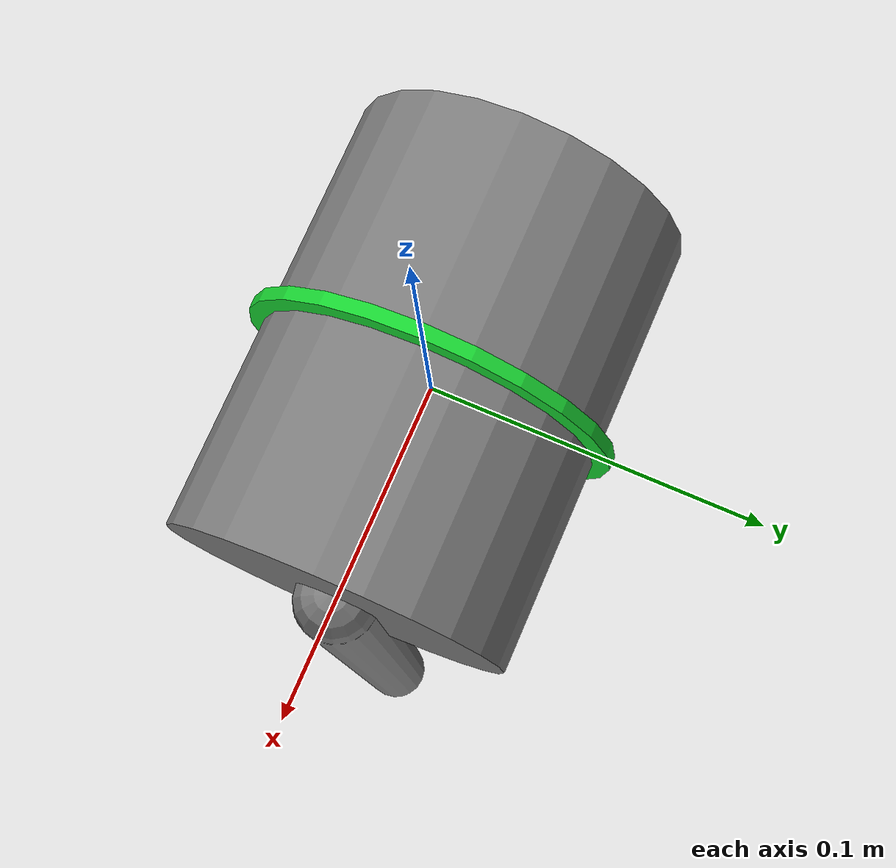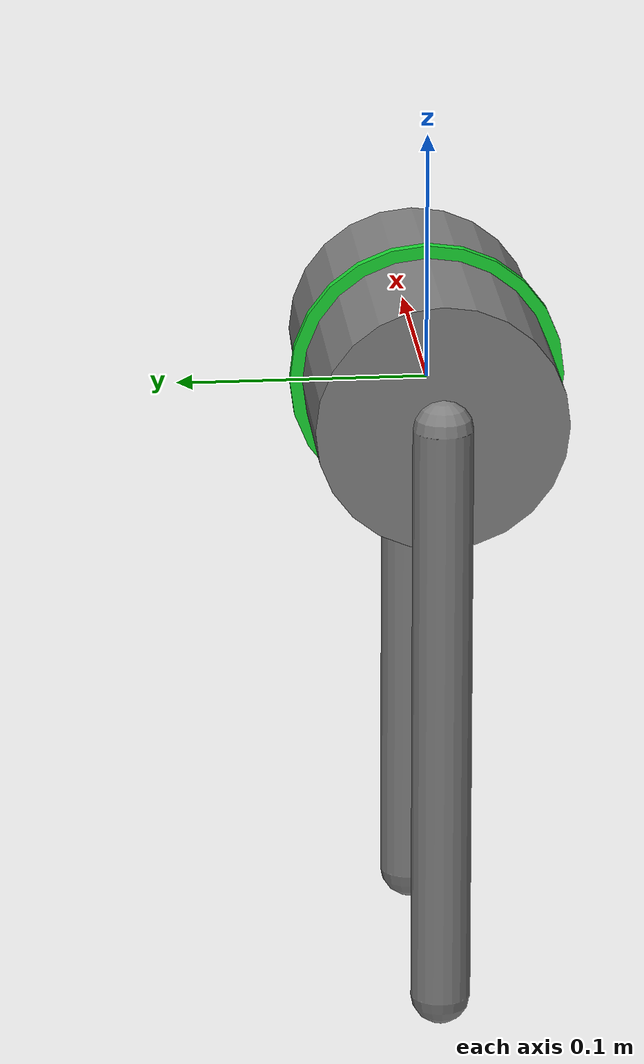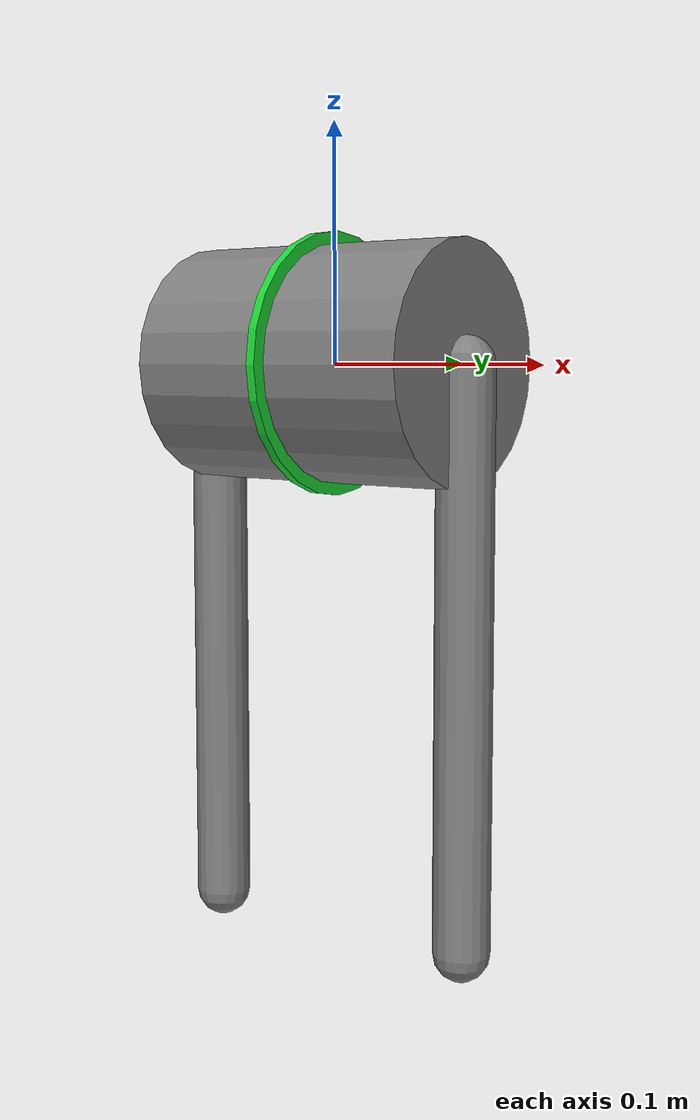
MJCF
<mujoco model="slider_slider_rotate">
  <compiler angle="radian"/>

  <worldbody>
    <body name="slider_rotate">
      <joint name="body_free_joint" type="free" damping="1"/>

      <geom name="l_half_geom" group="2" type="cylinder" fromto="-0.0025 0 0 -0.065 0 0" size="0.05" mass="0.25"/>

      <site name="IMU" pos="0 0 0" size="0.01" rgba="1 0 1 1"/>
      <site name="GYRO" pos="0 0 0" size="0.01" rgba="0 1 1 1"/>
      <site name="VELOCITY" pos="0 0 0" size="0.01" rgba="0 1 1 1"/>

      <body name="l_slider" pos="-0.065 0 0">
        <joint name="l_slide_joint" type="slide" axis="0 0 -1" limited="true" range="-0.2408319 0" damping="0.3" frictionloss="0.01"/>
        <geom name="l_slider_geom" group="2" type="capsule" size="0.012" fromto="0 0 0 0 0 -0.2408319" mass="0.1" friction="1 0.1 0.1"/>
      </body>

      <body name="r_half">
        <joint name="center_joint" type="hinge" axis="-1 0 0" damping="0.3" frictionloss="0.01"/>
        <geom name="r_half_geom" group="2" type="cylinder" fromto="0.0025 0 0 0.065 0 0" size="0.05" mass="0.25"/>
        <!-- visual-only disc in the center gap, marks the rotating joint -->
        <geom name="center_disc" group="2" type="cylinder" fromto="0.002 0 0 -0.002 0 0" size="0.055" mass="0.001" contype="0" conaffinity="0" rgba="0.1 0.85 0.2 1"/>

        <body name="r_slider" pos="0.065 0 0">
          <joint name="r_slide_joint" type="slide" axis="0 0 -1" limited="true" range="-0.2408319 0" damping="0.3" frictionloss="0.01"/>
          <geom name="r_slider_geom" group="2" type="capsule" size="0.012" fromto="0 0 0 0 0 -0.2408319" mass="0.1" friction="1 0.1 0.1"/>
        </body>
      </body>
    </body>
  </worldbody>

  <actuator>
    <intvelocity name="center_motor" joint="center_joint" gear="1" kp="1" actrange="-inf inf" ctrllimited="true" ctrlrange="-5.2359877 5.2359877" forcelimited="true" forcerange="-2.94 2.94"/>
    <position name="r_motor" joint="r_slide_joint" gear="-4.1522738" kp="100" kv="3.48" timeconst="0.5" ctrllimited="true" ctrlrange="0 1" forcelimited="true" forcerange="-30 30"/>
    <position name="l_motor" joint="l_slide_joint" gear="-4.1522738" kp="100" kv="3.48" timeconst="0.5" ctrllimited="true" ctrlrange="0 1" forcelimited="true" forcerange="-30 30"/>
  </actuator>

  <sensor>
    <accelerometer name="accelerometer" site="IMU"/>
    <gyro name="gyro" site="GYRO"/>
    <velocimeter name="velocimeter" site="VELOCITY"/>
  </sensor>
</mujoco>
